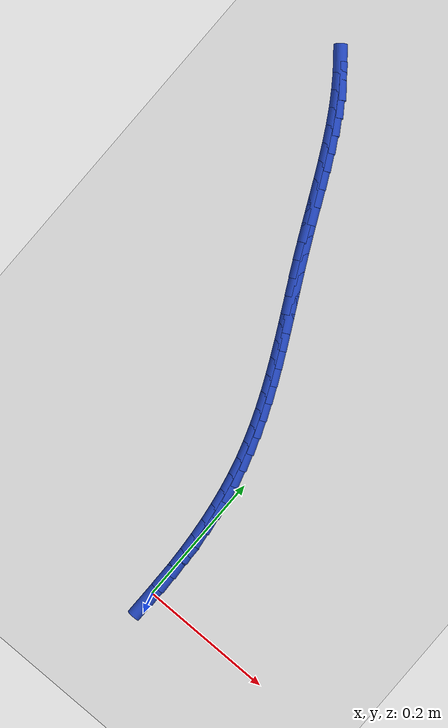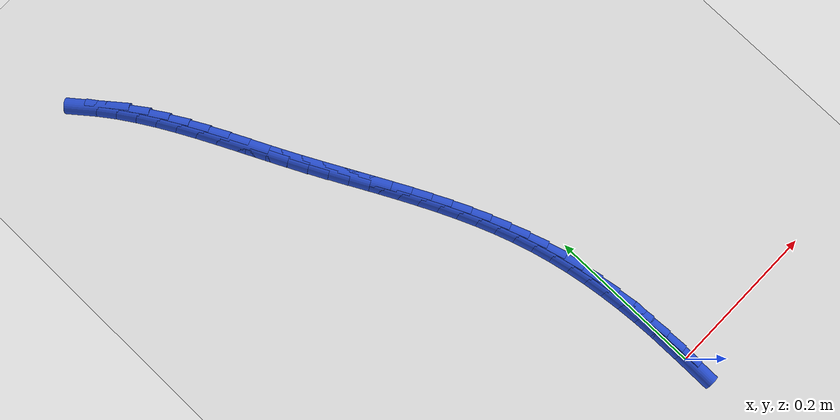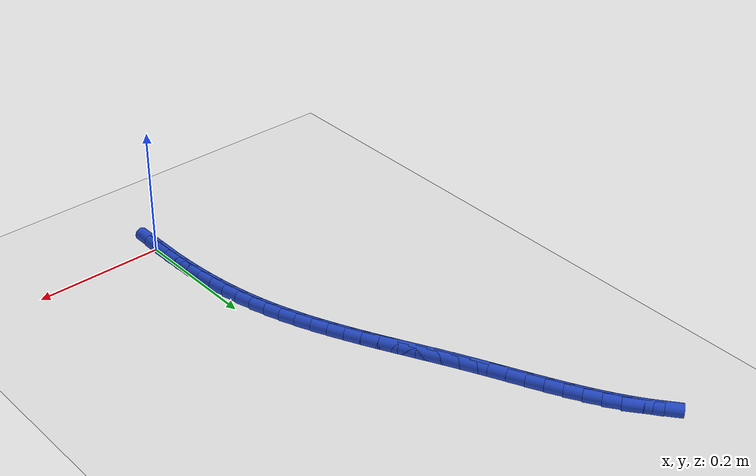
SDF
<sdf version="1.6">
 <world name="default">
  <model name="ground_plane">
   <static>1</static>
   <link name="link">
    <collision name="collision">
     <geometry><plane><normal>0 0 1</normal><size>100 100</size></plane></geometry>
     <surface><friction><ode><mu>100</mu><mu2>50</mu2></ode></friction></surface>
    </collision>
    <visual name="visual">
     <cast_shadows>0</cast_shadows>
     <geometry><plane><normal>0 0 1</normal><size>100 100</size></plane></geometry>
     <material>
      <script><uri>file://media/materials/scripts/gazebo.material</uri><name>Gazebo/WhiteGlow</name></script>
     </material>
    </visual>
   </link>
  </model>
  <model name="line">
   <link name="link_0">
    <pose>-4.336808689942018e-18 1.3877787807814457e-17 0.01 0 1.57 1.5680417026096576</pose>
    <collision name="collision">
     <geometry><cylinder><radius>0.01</radius><length>0.08</length></cylinder></geometry>
    </collision>
    <visual name="visual">
     <material>
      <script><name>Gazebo/Blue</name><uri>file://media/materials/scripts/gazebo.material</uri></script>
     </material>
     <geometry><cylinder><radius>0.01</radius><length>0.08</length></cylinder></geometry>
    </visual>
   </link>
   <link name="link_1">
    <pose>7.055029583573843e-05 0.025611521807425305 0.01 0 1.57 -1.5491371057237977</pose>
    <collision name="collision">
     <geometry><cylinder><radius>0.01</radius><length>0.08</length></cylinder></geometry>
    </collision>
    <visual name="visual">
     <material>
      <script><name>Gazebo/Blue</name><uri>file://media/materials/scripts/gazebo.material</uri></script>
     </material>
     <geometry><cylinder><radius>0.01</radius><length>0.08</length></cylinder></geometry>
    </visual>
   </link>
   <link name="link_2">
    <pose>-0.00048506980762607114 0.05126033043305126 0.01 0 1.57 -1.522812633808329</pose>
    <collision name="collision">
     <geometry><cylinder><radius>0.01</radius><length>0.08</length></cylinder></geometry>
    </collision>
    <visual name="visual">
     <material>
      <script><name>Gazebo/Blue</name><uri>file://media/materials/scripts/gazebo.material</uri></script>
     </material>
     <geometry><cylinder><radius>0.01</radius><length>0.08</length></cylinder></geometry>
    </visual>
   </link>
   <link name="link_3">
    <pose>-0.0017159725484607558 0.07689316167516233 0.01 0 1.57 -1.494457365363137</pose>
    <collision name="collision">
     <geometry><cylinder><radius>0.01</radius><length>0.08</length></cylinder></geometry>
    </collision>
    <visual name="visual">
     <material>
      <script><name>Gazebo/Blue</name><uri>file://media/materials/scripts/gazebo.material</uri></script>
     </material>
     <geometry><cylinder><radius>0.01</radius><length>0.08</length></cylinder></geometry>
    </visual>
   </link>
   <link name="link_4">
    <pose>-0.0036712701647436327 0.10245675133204282 0.01 0 1.57 -1.4639450725006127</pose>
    <collision name="collision">
     <geometry><cylinder><radius>0.01</radius><length>0.08</length></cylinder></geometry>
    </collision>
    <visual name="visual">
     <material>
      <script><name>Gazebo/Blue</name><uri>file://media/materials/scripts/gazebo.material</uri></script>
     </material>
     <geometry><cylinder><radius>0.01</radius><length>0.08</length></cylinder></geometry>
    </visual>
   </link>
   <link name="link_5">
    <pose>-0.006400074894550021 0.12789783520197714 0.01 0 1.57 -1.4311460862650385</pose>
    <collision name="collision">
     <geometry><cylinder><radius>0.01</radius><length>0.08</length></cylinder></geometry>
    </collision>
    <visual name="visual">
     <material>
      <script><name>Gazebo/Blue</name><uri>file://media/materials/scripts/gazebo.material</uri></script>
     </material>
     <geometry><cylinder><radius>0.01</radius><length>0.08</length></cylinder></geometry>
    </visual>
   </link>
   <link name="link_6">
    <pose>-0.009951498975955243 0.1531631490832497 0.01 0 1.57 -1.3959308947107396</pose>
    <collision name="collision">
     <geometry><cylinder><radius>0.01</radius><length>0.08</length></cylinder></geometry>
    </collision>
    <visual name="visual">
     <material>
      <script><name>Gazebo/Blue</name><uri>file://media/materials/scripts/gazebo.material</uri></script>
     </material>
     <geometry><cylinder><radius>0.01</radius><length>0.08</length></cylinder></geometry>
    </visual>
   </link>
   <link name="link_7">
    <pose>-0.014374654647034621 0.17819942877414496 0.01 0 1.57 -1.3581749533216638</pose>
    <collision name="collision">
     <geometry><cylinder><radius>0.01</radius><length>0.08</length></cylinder></geometry>
    </collision>
    <visual name="visual">
     <material>
      <script><name>Gazebo/Blue</name><uri>file://media/materials/scripts/gazebo.material</uri></script>
     </material>
     <geometry><cylinder><radius>0.01</radius><length>0.08</length></cylinder></geometry>
    </visual>
   </link>
   <link name="link_8">
    <pose>-0.019718654145863462 0.2029534100729472 0.01 0 1.57 -1.3177649226880668</pose>
    <collision name="collision">
     <geometry><cylinder><radius>0.01</radius><length>0.08</length></cylinder></geometry>
    </collision>
    <visual name="visual">
     <material>
      <script><name>Gazebo/Blue</name><uri>file://media/materials/scripts/gazebo.material</uri></script>
     </material>
     <geometry><cylinder><radius>0.01</radius><length>0.08</length></cylinder></geometry>
    </visual>
   </link>
   <link name="link_9">
    <pose>-0.026032609710517095 0.22737182877794082 0.01 0 1.57 -1.275369090368251</pose>
    <collision name="collision">
     <geometry><cylinder><radius>0.01</radius><length>0.08</length></cylinder></geometry>
    </collision>
    <visual name="visual">
     <material>
      <script><name>Gazebo/Blue</name><uri>file://media/materials/scripts/gazebo.material</uri></script>
     </material>
     <geometry><cylinder><radius>0.01</radius><length>0.08</length></cylinder></geometry>
    </visual>
   </link>
   <link name="link_10">
    <pose>-0.03334909648308402 0.25141288774580556 0.01 0 1.57 -1.235606407601596</pose>
    <collision name="collision">
     <geometry><cylinder><radius>0.01</radius><length>0.08</length></cylinder></geometry>
    </collision>
    <visual name="visual">
     <material>
      <script><name>Gazebo/Blue</name><uri>file://media/materials/scripts/gazebo.material</uri></script>
     </material>
     <geometry><cylinder><radius>0.01</radius><length>0.08</length></cylinder></geometry>
    </visual>
   </link>
   <link name="link_11">
    <pose>-0.041601393582262176 0.2751036431131158 0.01 0 1.57 -1.2003809797950418</pose>
    <collision name="collision">
     <geometry><cylinder><radius>0.01</radius><length>0.08</length></cylinder></geometry>
    </collision>
    <visual name="visual">
     <material>
      <script><name>Gazebo/Blue</name><uri>file://media/materials/scripts/gazebo.material</uri></script>
     </material>
     <geometry><cylinder><radius>0.01</radius><length>0.08</length></cylinder></geometry>
    </visual>
   </link>
   <link name="link_12">
    <pose>-0.050685890326047825 0.2984967309307895 0.01 0 1.57 -1.1698377883868836</pose>
    <collision name="collision">
     <geometry><cylinder><radius>0.01</radius><length>0.08</length></cylinder></geometry>
    </collision>
    <visual name="visual">
     <material>
      <script><name>Gazebo/Blue</name><uri>file://media/materials/scripts/gazebo.material</uri></script>
     </material>
     <geometry><cylinder><radius>0.01</radius><length>0.08</length></cylinder></geometry>
    </visual>
   </link>
   <link name="link_13">
    <pose>-0.06049891474358161 0.32164482974831193 0.01 0 1.57 -1.1440449770562544</pose>
    <collision name="collision">
     <geometry><cylinder><radius>0.01</radius><length>0.08</length></cylinder></geometry>
    </collision>
    <visual name="visual">
     <material>
      <script><name>Gazebo/Blue</name><uri>file://media/materials/scripts/gazebo.material</uri></script>
     </material>
     <geometry><cylinder><radius>0.01</radius><length>0.08</length></cylinder></geometry>
    </visual>
   </link>
   <link name="link_14">
    <pose>-0.07093679486400416 0.3446006181151686 0.01 0 1.57 -1.1230160361813752</pose>
    <collision name="collision">
     <geometry><cylinder><radius>0.01</radius><length>0.08</length></cylinder></geometry>
    </collision>
    <visual name="visual">
     <material>
      <script><name>Gazebo/Blue</name><uri>file://media/materials/scripts/gazebo.material</uri></script>
     </material>
     <geometry><cylinder><radius>0.01</radius><length>0.08</length></cylinder></geometry>
    </visual>
   </link>
   <link name="link_15">
    <pose>-0.08189585871645608 0.3674167745808446 0.01 0 1.57 -1.106727355614148</pose>
    <collision name="collision">
     <geometry><cylinder><radius>0.01</radius><length>0.08</length></cylinder></geometry>
    </collision>
    <visual name="visual">
     <material>
      <script><name>Gazebo/Blue</name><uri>file://media/materials/scripts/gazebo.material</uri></script>
     </material>
     <geometry><cylinder><radius>0.01</radius><length>0.08</length></cylinder></geometry>
    </visual>
   </link>
   <link name="link_16">
    <pose>-0.09327243433007798 0.39014597769482534 0.01 0 1.57 -1.0951328415391106</pose>
    <collision name="collision">
     <geometry><cylinder><radius>0.01</radius><length>0.08</length></cylinder></geometry>
    </collision>
    <visual name="visual">
     <material>
      <script><name>Gazebo/Blue</name><uri>file://media/materials/scripts/gazebo.material</uri></script>
     </material>
     <geometry><cylinder><radius>0.01</radius><length>0.08</length></cylinder></geometry>
    </visual>
   </link>
   <link name="link_17">
    <pose>-0.10496284973401057 0.4128409060065961 0.01 0 1.57 -1.0881751250278064</pose>
    <collision name="collision">
     <geometry><cylinder><radius>0.01</radius><length>0.08</length></cylinder></geometry>
    </collision>
    <visual name="visual">
     <material>
      <script><name>Gazebo/Blue</name><uri>file://media/materials/scripts/gazebo.material</uri></script>
     </material>
     <geometry><cylinder><radius>0.01</radius><length>0.08</length></cylinder></geometry>
    </visual>
   </link>
   <link name="link_18">
    <pose>-0.11686343295739435 0.4355542380656421 0.01 0 1.57 -1.085793312610284</pose>
    <collision name="collision">
     <geometry><cylinder><radius>0.01</radius><length>0.08</length></cylinder></geometry>
    </collision>
    <visual name="visual">
     <material>
      <script><name>Gazebo/Blue</name><uri>file://media/materials/scripts/gazebo.material</uri></script>
     </material>
     <geometry><cylinder><radius>0.01</radius><length>0.08</length></cylinder></geometry>
    </visual>
   </link>
   <link name="link_19">
    <pose>-0.12887051202937005 0.4583386524214487 0.01 0 1.57 -1.087927451853636</pose>
    <collision name="collision">
     <geometry><cylinder><radius>0.01</radius><length>0.08</length></cylinder></geometry>
    </collision>
    <visual name="visual">
     <material>
      <script><name>Gazebo/Blue</name><uri>file://media/materials/scripts/gazebo.material</uri></script>
     </material>
     <geometry><cylinder><radius>0.01</radius><length>0.08</length></cylinder></geometry>
    </visual>
   </link>
   <link name="link_20">
    <pose>-0.14088041497907822 0.48124682762350124 0.01 0 1.57 -1.0945199679432143</pose>
    <collision name="collision">
     <geometry><cylinder><radius>0.01</radius><length>0.08</length></cylinder></geometry>
    </collision>
    <visual name="visual">
     <material>
      <script><name>Gazebo/Blue</name><uri>file://media/materials/scripts/gazebo.material</uri></script>
     </material>
     <geometry><cylinder><radius>0.01</radius><length>0.08</length></cylinder></geometry>
    </visual>
   </link>
   <link name="link_21">
    <pose>-0.15278946983565958 0.5043314422212849 0.01 0 1.57 -1.105394530843542</pose>
    <collision name="collision">
     <geometry><cylinder><radius>0.01</radius><length>0.08</length></cylinder></geometry>
    </collision>
    <visual name="visual">
     <material>
      <script><name>Gazebo/Blue</name><uri>file://media/materials/scripts/gazebo.material</uri></script>
     </material>
     <geometry><cylinder><radius>0.01</radius><length>0.08</length></cylinder></geometry>
    </visual>
   </link>
   <link name="link_22">
    <pose>-0.16449650476497268 0.5276431893219367 0.01 0 1.57 -1.1158279894619605</pose>
    <collision name="collision">
     <geometry><cylinder><radius>0.01</radius><length>0.08</length></cylinder></geometry>
    </collision>
    <visual name="visual">
     <material>
      <script><name>Gazebo/Blue</name><uri>file://media/materials/scripts/gazebo.material</uri></script>
     </material>
     <geometry><cylinder><radius>0.01</radius><length>0.08</length></cylinder></geometry>
    </visual>
   </link>
   <link name="link_23">
    <pose>-0.1759983806410735 0.5511549109738976 0.01 0 1.57 -1.1197820143163177</pose>
    <collision name="collision">
     <geometry><cylinder><radius>0.01</radius><length>0.08</length></cylinder></geometry>
    </collision>
    <visual name="visual">
     <material>
      <script><name>Gazebo/Blue</name><uri>file://media/materials/scripts/gazebo.material</uri></script>
     </material>
     <geometry><cylinder><radius>0.01</radius><length>0.08</length></cylinder></geometry>
    </visual>
   </link>
   <link name="link_24">
    <pose>-0.18741979432647132 0.5747379303833419 0.01 0 1.57 -1.1168957354018232</pose>
    <collision name="collision">
     <geometry><cylinder><radius>0.01</radius><length>0.08</length></cylinder></geometry>
    </collision>
    <visual name="visual">
     <material>
      <script><name>Gazebo/Blue</name><uri>file://media/materials/scripts/gazebo.material</uri></script>
     </material>
     <geometry><cylinder><radius>0.01</radius><length>0.08</length></cylinder></geometry>
    </visual>
   </link>
   <link name="link_25">
    <pose>-0.1988940354471787 0.5982567469549984 0.01 0 1.57 -1.1071212175472944</pose>
    <collision name="collision">
     <geometry><cylinder><radius>0.01</radius><length>0.08</length></cylinder></geometry>
    </collision>
    <visual name="visual">
     <material>
      <script><name>Gazebo/Blue</name><uri>file://media/materials/scripts/gazebo.material</uri></script>
     </material>
     <geometry><cylinder><radius>0.01</radius><length>0.08</length></cylinder></geometry>
    </visual>
   </link>
   <link name="link_26">
    <pose>-0.2105543936292081 0.6215758600935963 0.01 0 1.57 -1.0903140474061312</pose>
    <collision name="collision">
     <geometry><cylinder><radius>0.01</radius><length>0.08</length></cylinder></geometry>
    </collision>
    <visual name="visual">
     <material>
      <script><name>Gazebo/Blue</name><uri>file://media/materials/scripts/gazebo.material</uri></script>
     </material>
     <geometry><cylinder><radius>0.01</radius><length>0.08</length></cylinder></geometry>
    </visual>
   </link>
   <link name="link_27">
    <pose>-0.22253415849857214 0.6445597692038644 0.01 0 1.57 -1.0662428311521037</pose>
    <collision name="collision">
     <geometry><cylinder><radius>0.01</radius><length>0.08</length></cylinder></geometry>
    </collision>
    <visual name="visual">
     <material>
      <script><name>Gazebo/Blue</name><uri>file://media/materials/scripts/gazebo.material</uri></script>
     </material>
     <geometry><cylinder><radius>0.01</radius><length>0.08</length></cylinder></geometry>
    </visual>
   </link>
   <link name="link_28">
    <pose>-0.23496661968128338 0.667072973690532 0.01 0 1.57 -1.0346083159331834</pose>
    <collision name="collision">
     <geometry><cylinder><radius>0.01</radius><length>0.08</length></cylinder></geometry>
    </collision>
    <visual name="visual">
     <material>
      <script><name>Gazebo/Blue</name><uri>file://media/materials/scripts/gazebo.material</uri></script>
     </material>
     <geometry><cylinder><radius>0.01</radius><length>0.08</length></cylinder></geometry>
    </visual>
   </link>
   <link name="link_29">
    <pose>-0.24798506680335436 0.6889799729583277 0.01 0 1.57 -0.9950763039774384</pose>
    <collision name="collision">
     <geometry><cylinder><radius>0.01</radius><length>0.08</length></cylinder></geometry>
    </collision>
    <visual name="visual">
     <material>
      <script><name>Gazebo/Blue</name><uri>file://media/materials/scripts/gazebo.material</uri></script>
     </material>
     <geometry><cylinder><radius>0.01</radius><length>0.08</length></cylinder></geometry>
    </visual>
   </link>
   <link name="link_30">
    <pose>-0.26172278949079764 0.7101452664119807 0.01 0 1.57 -0.9473297229712957</pose>
    <collision name="collision">
     <geometry><cylinder><radius>0.01</radius><length>0.08</length></cylinder></geometry>
    </collision>
    <visual name="visual">
     <material>
      <script><name>Gazebo/Blue</name><uri>file://media/materials/scripts/gazebo.material</uri></script>
     </material>
     <geometry><cylinder><radius>0.01</radius><length>0.08</length></cylinder></geometry>
    </visual>
   </link>
   <link name="link_31">
    <pose>-0.2763130773696256 0.73043335345622 0.01 0 1.57 -0.8911449999154133</pose>
    <collision name="collision">
     <geometry><cylinder><radius>0.01</radius><length>0.08</length></cylinder></geometry>
    </collision>
    <visual name="visual">
     <material>
      <script><name>Gazebo/Blue</name><uri>file://media/materials/scripts/gazebo.material</uri></script>
     </material>
     <geometry><cylinder><radius>0.01</radius><length>0.08</length></cylinder></geometry>
    </visual>
   </link>
   <link name="link_271">
    <pose>7.811692377327449e-05 0.025621435413432654 0.01 0 1.57 -1.5512541487490326</pose>
    <collision name="collision">
     <geometry><cylinder><radius>0.01</radius><length>0.08</length></cylinder></geometry>
    </collision>
    <visual name="visual">
     <material>
      <script><name>Gazebo/Blue</name><uri>file://media/materials/scripts/gazebo.material</uri></script>
     </material>
     <geometry><cylinder><radius>0.01</radius><length>0.08</length></cylinder></geometry>
    </visual>
   </link>
   <link name="link_272">
    <pose>-0.00042453678412574577 0.05133963928110831 0.01 0 1.57 -1.5625273339864254</pose>
    <collision name="collision">
     <geometry><cylinder><radius>0.01</radius><length>0.08</length></cylinder></geometry>
    </collision>
    <visual name="visual">
     <material>
      <script><name>Gazebo/Blue</name><uri>file://media/materials/scripts/gazebo.material</uri></script>
     </material>
     <geometry><cylinder><radius>0.01</radius><length>0.08</length></cylinder></geometry>
    </visual>
   </link>
  </model>
 </world>
</sdf>
